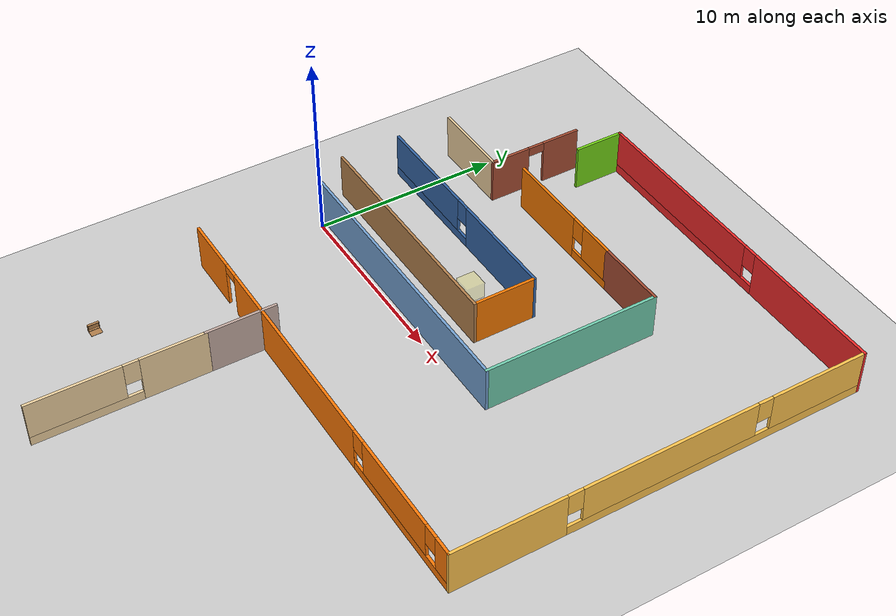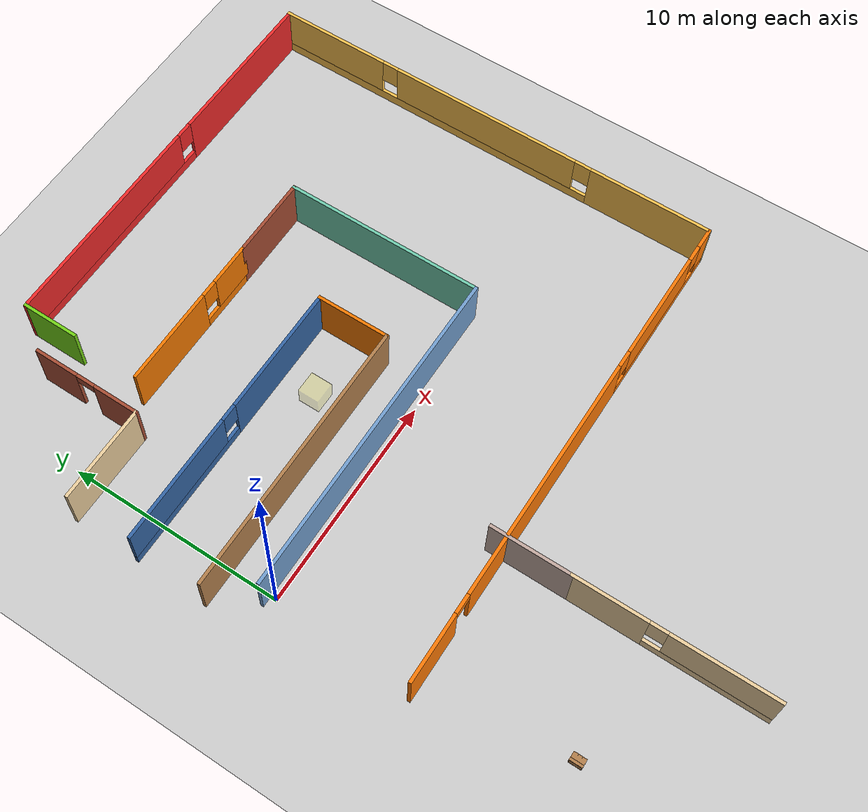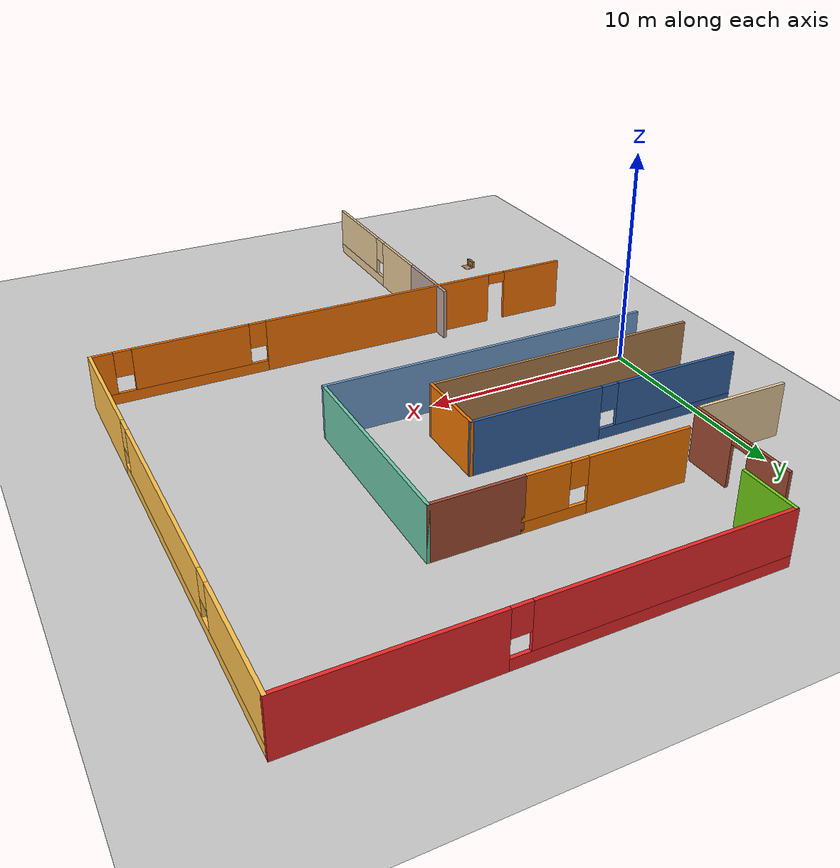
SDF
<sdf version="1.7">
 <world name="default">
  <model name="ground_plane">
   <static>1</static>
   <link name="link">
    <collision name="collision">
     <geometry><plane><normal>0 0 1</normal><size>100 100</size></plane></geometry>
     <surface>
      <contact><collide_bitmask>65535</collide_bitmask></contact>
      <friction><ode><mu>100</mu><mu2>50</mu2></ode></friction>
     </surface>
    </collision>
    <visual name="visual">
     <cast_shadows>0</cast_shadows>
     <geometry><plane><normal>0 0 1</normal><size>100 100</size></plane></geometry>
     <material>
      <script><uri>file://media/materials/scripts/gazebo.material</uri><name>Gazebo/Grey</name></script>
     </material>
    </visual>
   </link>
  </model>
  <model name="pavan">
   <pose>0.117796 3.95267 0 0 -0 0</pose>
   <link name="Wall_0">
    <collision name="Wall_0_Collision">
     <geometry><box><size>13 0.15 2.5</size></box></geometry>
     <pose>0 0 1.25 0 -0 0</pose>
    </collision>
    <visual name="Wall_0_Visual">
     <pose>0 0 1.25 0 -0 0</pose>
     <geometry><box><size>13 0.15 2.5</size></box></geometry>
     <material>
      <script><uri>file://media/materials/scripts/gazebo.material</uri><name>Gazebo/Wood</name></script>
      <ambient>0.937255 0.160784 0.160784 1</ambient>
     </material>
     <meta><layer>0</layer></meta>
    </visual>
    <pose>4.64523 -1.73876 0 0 -0 0</pose>
   </link>
   <link name="Wall_1">
    <collision name="Wall_1_Collision">
     <geometry><box><size>3.5 0.15 2.5</size></box></geometry>
     <pose>0 0 1.25 0 -0 0</pose>
    </collision>
    <visual name="Wall_1_Visual">
     <pose>0 0 1.25 0 -0 0</pose>
     <geometry><box><size>3.5 0.15 2.5</size></box></geometry>
     <material>
      <script><uri>file://media/materials/scripts/gazebo.material</uri><name>Gazebo/Grey</name></script>
      <ambient>0.960784 0.47451 0 1</ambient>
     </material>
     <meta><layer>0</layer></meta>
    </visual>
    <pose>11.0702 -0.063756 0 0 -0 1.5708</pose>
   </link>
   <link name="Wall_10">
    <pose>7.5403 5.74557 0 0 -0 0</pose>
    <visual name="Wall_10_Visual_0">
     <pose>-1.42681 0 1.25 0 -0 0</pose>
     <geometry><box><size>4.64637 0.15 2.5</size></box></geometry>
     <material>
      <script><uri>file://media/materials/scripts/gazebo.material</uri><name>Gazebo/Grey</name></script>
      <ambient>0.960784 0.47451 0 1</ambient>
     </material>
     <meta><layer>0</layer></meta>
    </visual>
    <collision name="Wall_10_Collision_0">
     <geometry><box><size>4.64637 0.15 2.5</size></box></geometry>
     <pose>-1.42681 0 1.25 0 -0 0</pose>
    </collision>
    <visual name="Wall_10_Visual_1">
     <pose>2.32319 0 0.25 0 -0 0</pose>
     <geometry><box><size>2.85363 0.15 0.5</size></box></geometry>
     <material>
      <script><uri>file://media/materials/scripts/gazebo.material</uri><name>Gazebo/Grey</name></script>
      <ambient>0.960784 0.47451 0 1</ambient>
     </material>
     <meta><layer>0</layer></meta>
    </visual>
    <collision name="Wall_10_Collision_1">
     <geometry><box><size>2.85363 0.15 0.5</size></box></geometry>
     <pose>2.32319 0 0.25 0 -0 0</pose>
    </collision>
    <visual name="Wall_10_Visual_2">
     <pose>2.72319 0 1.5 0 -0 0</pose>
     <geometry><box><size>2.05362 0.15 2</size></box></geometry>
     <material>
      <script><uri>file://media/materials/scripts/gazebo.material</uri><name>Gazebo/Grey</name></script>
      <ambient>0.960784 0.47451 0 1</ambient>
     </material>
     <meta><layer>0</layer></meta>
    </visual>
    <collision name="Wall_10_Collision_2">
     <geometry><box><size>2.05362 0.15 2</size></box></geometry>
     <pose>2.72319 0 1.5 0 -0 0</pose>
    </collision>
    <visual name="Wall_10_Visual_3">
     <pose>1.29638 0 1.9 0 -0 0</pose>
     <geometry><box><size>0.8 0.15 1.2</size></box></geometry>
     <material>
      <script><uri>file://media/materials/scripts/gazebo.material</uri><name>Gazebo/Grey</name></script>
      <ambient>0.960784 0.47451 0 1</ambient>
     </material>
     <meta><layer>0</layer></meta>
    </visual>
    <collision name="Wall_10_Collision_3">
     <geometry><box><size>0.8 0.15 1.2</size></box></geometry>
     <pose>1.29638 0 1.9 0 -0 0</pose>
    </collision>
   </link>
   <link name="Wall_11">
    <collision name="Wall_11_Collision">
     <geometry><box><size>4 0.15 2.5</size></box></geometry>
     <pose>0 0 1.25 0 -0 0</pose>
    </collision>
    <visual name="Wall_11_Visual">
     <pose>0 0 1.25 0 -0 0</pose>
     <geometry><box><size>4 0.15 2.5</size></box></geometry>
     <material>
      <script><uri>file://media/materials/scripts/gazebo.material</uri><name>Gazebo/Bricks</name></script>
      <ambient>1 1 1 1</ambient>
     </material>
     <meta><layer>0</layer></meta>
    </visual>
    <pose>13.1403 5.74557 0 0 -0 0</pose>
   </link>
   <link name="Wall_12">
    <collision name="Wall_12_Collision">
     <geometry><box><size>9.5 0.15 2.5</size></box></geometry>
     <pose>0 0 1.25 0 -0 0</pose>
    </collision>
    <visual name="Wall_12_Visual">
     <pose>0 0 1.25 0 -0 0</pose>
     <geometry><box><size>9.5 0.15 2.5</size></box></geometry>
     <material>
      <script><uri>file://media/materials/scripts/gazebo.material</uri><name>Gazebo/Grey</name></script>
      <ambient>0.435294 0.796078 0.67451 1</ambient>
     </material>
     <meta><layer>0</layer></meta>
    </visual>
    <pose>15.0653 1.07057 0 0 -0 -1.5708</pose>
   </link>
   <link name="Wall_13">
    <collision name="Wall_13_Collision">
     <geometry><box><size>15.75 0.15 2.5</size></box></geometry>
     <pose>0 0 1.25 0 -0 0</pose>
    </collision>
    <visual name="Wall_13_Visual">
     <pose>0 0 1.25 0 -0 0</pose>
     <geometry><box><size>15.75 0.15 2.5</size></box></geometry>
     <material>
      <script><uri>file://media/materials/scripts/gazebo.material</uri><name>Gazebo/Grey</name></script>
      <ambient>0.447059 0.623529 0.811765 1</ambient>
     </material>
     <meta><layer>0</layer></meta>
    </visual>
    <pose>7.2653 -3.60443 0 0 -0 3.14159</pose>
   </link>
   <link name="Wall_15">
    <pose>11.2653 -10.4544 0 0 -0 0</pose>
    <visual name="Wall_15_Visual_0">
     <pose>-10.2863 0 1.25 0 -0 0</pose>
     <geometry><box><size>3.17738 0.15 2.5</size></box></geometry>
     <material>
      <script><uri>file://media/materials/scripts/gazebo.material</uri><name>Gazebo/Grey</name></script>
      <ambient>0.996078 0.47451 0.0196078 1</ambient>
     </material>
     <meta><layer>0</layer></meta>
    </visual>
    <collision name="Wall_15_Collision_0">
     <geometry><box><size>3.17738 0.15 2.5</size></box></geometry>
     <pose>-10.2863 0 1.25 0 -0 0</pose>
    </collision>
    <visual name="Wall_15_Visual_1">
     <pose>-1.95398 0 1.25 0 -0 0</pose>
     <geometry><box><size>11.6873 0.15 2.5</size></box></geometry>
     <material>
      <script><uri>file://media/materials/scripts/gazebo.material</uri><name>Gazebo/Grey</name></script>
      <ambient>0.996078 0.47451 0.0196078 1</ambient>
     </material>
     <meta><layer>0</layer></meta>
    </visual>
    <collision name="Wall_15_Collision_1">
     <geometry><box><size>11.6873 0.15 2.5</size></box></geometry>
     <pose>-1.95398 0 1.25 0 -0 0</pose>
    </collision>
    <visual name="Wall_15_Visual_2">
     <pose>3.88967 0 1.25 0 -0 0</pose>
     <geometry><box><size>0 0.15 2.5</size></box></geometry>
     <material>
      <script><uri>file://media/materials/scripts/gazebo.material</uri><name>Gazebo/Grey</name></script>
      <ambient>0.996078 0.47451 0.0196078 1</ambient>
     </material>
     <meta><layer>0</layer></meta>
    </visual>
    <collision name="Wall_15_Collision_2">
     <geometry><box><size>0 0.15 2.5</size></box></geometry>
     <pose>3.88967 0 1.25 0 -0 0</pose>
    </collision>
    <visual name="Wall_15_Visual_3">
     <pose>7.88234 0 0.25 0 -0 0</pose>
     <geometry><box><size>7.98532 0.15 0.5</size></box></geometry>
     <material>
      <script><uri>file://media/materials/scripts/gazebo.material</uri><name>Gazebo/Grey</name></script>
      <ambient>0.996078 0.47451 0.0196078 1</ambient>
     </material>
     <meta><layer>0</layer></meta>
    </visual>
    <collision name="Wall_15_Collision_3">
     <geometry><box><size>7.98532 0.15 0.5</size></box></geometry>
     <pose>7.88234 0 0.25 0 -0 0</pose>
    </collision>
    <visual name="Wall_15_Visual_4">
     <pose>7.35787 0 1.5 0 -0 0</pose>
     <geometry><box><size>5.3364 0.15 2</size></box></geometry>
     <material>
      <script><uri>file://media/materials/scripts/gazebo.material</uri><name>Gazebo/Grey</name></script>
      <ambient>0.996078 0.47451 0.0196078 1</ambient>
     </material>
     <meta><layer>0</layer></meta>
    </visual>
    <collision name="Wall_15_Collision_4">
     <geometry><box><size>5.3364 0.15 2</size></box></geometry>
     <pose>7.35787 0 1.5 0 -0 0</pose>
    </collision>
    <visual name="Wall_15_Visual_5">
     <pose>11.3505 0 1.5 0 -0 0</pose>
     <geometry><box><size>1.04893 0.15 2</size></box></geometry>
     <material>
      <script><uri>file://media/materials/scripts/gazebo.material</uri><name>Gazebo/Grey</name></script>
      <ambient>0.996078 0.47451 0.0196078 1</ambient>
     </material>
     <meta><layer>0</layer></meta>
    </visual>
    <collision name="Wall_15_Collision_5">
     <geometry><box><size>1.04893 0.15 2</size></box></geometry>
     <pose>11.3505 0 1.5 0 -0 0</pose>
    </collision>
    <visual name="Wall_15_Visual_6">
     <pose>3.88967 0 1.9 0 -0 0</pose>
     <geometry><box><size>0 0.15 1.2</size></box></geometry>
     <material>
      <script><uri>file://media/materials/scripts/gazebo.material</uri><name>Gazebo/Grey</name></script>
      <ambient>0.996078 0.47451 0.0196078 1</ambient>
     </material>
     <meta><layer>0</layer></meta>
    </visual>
    <collision name="Wall_15_Collision_6">
     <geometry><box><size>0 0.15 1.2</size></box></geometry>
     <pose>3.88967 0 1.9 0 -0 0</pose>
    </collision>
    <visual name="Wall_15_Visual_7">
     <pose>4.28967 0 1.9 0 -0 0</pose>
     <geometry><box><size>0.8 0.15 1.2</size></box></geometry>
     <material>
      <script><uri>file://media/materials/scripts/gazebo.material</uri><name>Gazebo/Grey</name></script>
      <ambient>0.996078 0.47451 0.0196078 1</ambient>
     </material>
     <meta><layer>0</layer></meta>
    </visual>
    <collision name="Wall_15_Collision_7">
     <geometry><box><size>0.8 0.15 1.2</size></box></geometry>
     <pose>4.28967 0 1.9 0 -0 0</pose>
    </collision>
    <visual name="Wall_15_Visual_8">
     <pose>10.4261 0 1.9 0 -0 0</pose>
     <geometry><box><size>0.8 0.15 1.2</size></box></geometry>
     <material>
      <script><uri>file://media/materials/scripts/gazebo.material</uri><name>Gazebo/Grey</name></script>
      <ambient>0.996078 0.47451 0.0196078 1</ambient>
     </material>
     <meta><layer>0</layer></meta>
    </visual>
    <collision name="Wall_15_Collision_8">
     <geometry><box><size>0.8 0.15 1.2</size></box></geometry>
     <pose>10.4261 0 1.9 0 -0 0</pose>
    </collision>
    <visual name="Wall_15_Visual_9">
     <pose>-8.24762 0 2.25 0 -0 0</pose>
     <geometry><box><size>0.9 0.15 0.5</size></box></geometry>
     <material>
      <script><uri>file://media/materials/scripts/gazebo.material</uri><name>Gazebo/Grey</name></script>
      <ambient>0.996078 0.47451 0.0196078 1</ambient>
     </material>
     <meta><layer>0</layer></meta>
    </visual>
    <collision name="Wall_15_Collision_9">
     <geometry><box><size>0.9 0.15 0.5</size></box></geometry>
     <pose>-8.24762 0 2.25 0 -0 0</pose>
    </collision>
   </link>
   <link name="Wall_16">
    <pose>23.0653 0.595573 0 0 -0 1.5708</pose>
    <visual name="Wall_16_Visual_0">
     <pose>-8.17212 0 1.25 0 -0 0</pose>
     <geometry><box><size>5.90576 0.15 2.5</size></box></geometry>
     <material>
      <script><uri>file://media/materials/scripts/gazebo.material</uri><name>Gazebo/Grey</name></script>
      <ambient>1 0.764706 0.305882 1</ambient>
     </material>
     <meta><layer>0</layer></meta>
    </visual>
    <collision name="Wall_16_Collision_0">
     <geometry><box><size>5.90576 0.15 2.5</size></box></geometry>
     <pose>-8.17212 0 1.25 0 -0 0</pose>
    </collision>
    <visual name="Wall_16_Visual_1">
     <pose>2.95288 0 0.25 0 -0 0</pose>
     <geometry><box><size>16.3442 0.15 0.5</size></box></geometry>
     <material>
      <script><uri>file://media/materials/scripts/gazebo.material</uri><name>Gazebo/Grey</name></script>
      <ambient>1 0.764706 0.305882 1</ambient>
     </material>
     <meta><layer>0</layer></meta>
    </visual>
    <collision name="Wall_16_Collision_1">
     <geometry><box><size>16.3442 0.15 0.5</size></box></geometry>
     <pose>2.95288 0 0.25 0 -0 0</pose>
    </collision>
    <visual name="Wall_16_Visual_2">
     <pose>0.259157 0 1.5 0 -0 0</pose>
     <geometry><box><size>9.3568 0.15 2</size></box></geometry>
     <material>
      <script><uri>file://media/materials/scripts/gazebo.material</uri><name>Gazebo/Grey</name></script>
      <ambient>1 0.764706 0.305882 1</ambient>
     </material>
     <meta><layer>0</layer></meta>
    </visual>
    <collision name="Wall_16_Collision_2">
     <geometry><box><size>9.3568 0.15 2</size></box></geometry>
     <pose>0.259157 0 1.5 0 -0 0</pose>
    </collision>
    <visual name="Wall_16_Visual_3">
     <pose>8.43128 0 1.5 0 -0 0</pose>
     <geometry><box><size>5.38744 0.15 2</size></box></geometry>
     <material>
      <script><uri>file://media/materials/scripts/gazebo.material</uri><name>Gazebo/Grey</name></script>
      <ambient>1 0.764706 0.305882 1</ambient>
     </material>
     <meta><layer>0</layer></meta>
    </visual>
    <collision name="Wall_16_Collision_3">
     <geometry><box><size>5.38744 0.15 2</size></box></geometry>
     <pose>8.43128 0 1.5 0 -0 0</pose>
    </collision>
    <visual name="Wall_16_Visual_4">
     <pose>-4.81924 0 1.9 0 -0 0</pose>
     <geometry><box><size>0.8 0.15 1.2</size></box></geometry>
     <material>
      <script><uri>file://media/materials/scripts/gazebo.material</uri><name>Gazebo/Grey</name></script>
      <ambient>1 0.764706 0.305882 1</ambient>
     </material>
     <meta><layer>0</layer></meta>
    </visual>
    <collision name="Wall_16_Collision_4">
     <geometry><box><size>0.8 0.15 1.2</size></box></geometry>
     <pose>-4.81924 0 1.9 0 -0 0</pose>
    </collision>
    <visual name="Wall_16_Visual_5">
     <pose>5.33756 0 1.9 0 -0 0</pose>
     <geometry><box><size>0.8 0.15 1.2</size></box></geometry>
     <material>
      <script><uri>file://media/materials/scripts/gazebo.material</uri><name>Gazebo/Grey</name></script>
      <ambient>1 0.764706 0.305882 1</ambient>
     </material>
     <meta><layer>0</layer></meta>
    </visual>
    <collision name="Wall_16_Collision_5">
     <geometry><box><size>0.8 0.15 1.2</size></box></geometry>
     <pose>5.33756 0 1.9 0 -0 0</pose>
    </collision>
   </link>
   <link name="Wall_17">
    <pose>13.5153 11.6456 0 0 -0 3.14159</pose>
    <visual name="Wall_17_Visual_0">
     <pose>-5.68849 0 1.25 0 -0 0</pose>
     <geometry><box><size>7.87303 0.15 2.5</size></box></geometry>
     <material>
      <script><uri>file://media/materials/scripts/gazebo.material</uri><name>Gazebo/Grey</name></script>
      <ambient>0.937255 0.160784 0.160784 1</ambient>
     </material>
     <meta><layer>0</layer></meta>
    </visual>
    <collision name="Wall_17_Collision_0">
     <geometry><box><size>7.87303 0.15 2.5</size></box></geometry>
     <pose>-5.68849 0 1.25 0 -0 0</pose>
    </collision>
    <visual name="Wall_17_Visual_1">
     <pose>3.93651 0 0.25 0 -0 0</pose>
     <geometry><box><size>11.377 0.15 0.5</size></box></geometry>
     <material>
      <script><uri>file://media/materials/scripts/gazebo.material</uri><name>Gazebo/Grey</name></script>
      <ambient>0.937255 0.160784 0.160784 1</ambient>
     </material>
     <meta><layer>0</layer></meta>
    </visual>
    <collision name="Wall_17_Collision_1">
     <geometry><box><size>11.377 0.15 0.5</size></box></geometry>
     <pose>3.93651 0 0.25 0 -0 0</pose>
    </collision>
    <visual name="Wall_17_Visual_2">
     <pose>4.33651 0 1.5 0 -0 0</pose>
     <geometry><box><size>10.577 0.15 2</size></box></geometry>
     <material>
      <script><uri>file://media/materials/scripts/gazebo.material</uri><name>Gazebo/Grey</name></script>
      <ambient>0.937255 0.160784 0.160784 1</ambient>
     </material>
     <meta><layer>0</layer></meta>
    </visual>
    <collision name="Wall_17_Collision_2">
     <geometry><box><size>10.577 0.15 2</size></box></geometry>
     <pose>4.33651 0 1.5 0 -0 0</pose>
    </collision>
    <visual name="Wall_17_Visual_3">
     <pose>-1.35197 0 1.9 0 -0 0</pose>
     <geometry><box><size>0.8 0.15 1.2</size></box></geometry>
     <material>
      <script><uri>file://media/materials/scripts/gazebo.material</uri><name>Gazebo/Grey</name></script>
      <ambient>0.937255 0.160784 0.160784 1</ambient>
     </material>
     <meta><layer>0</layer></meta>
    </visual>
    <collision name="Wall_17_Collision_3">
     <geometry><box><size>0.8 0.15 1.2</size></box></geometry>
     <pose>-1.35197 0 1.9 0 -0 0</pose>
    </collision>
   </link>
   <link name="Wall_18">
    <collision name="Wall_18_Collision">
     <geometry><box><size>2.75 0.15 2.5</size></box></geometry>
     <pose>0 0 1.25 0 -0 0</pose>
    </collision>
    <visual name="Wall_18_Visual">
     <pose>0 0 1.25 0 -0 0</pose>
     <geometry><box><size>2.75 0.15 2.5</size></box></geometry>
     <material>
      <script><uri>file://media/materials/scripts/gazebo.material</uri><name>Gazebo/Grey</name></script>
      <ambient>0.45098 0.823529 0.0862745 1</ambient>
     </material>
     <meta><layer>0</layer></meta>
    </visual>
    <pose>3.9653 10.3456 0 0 -0 -1.5708</pose>
   </link>
   <link name="Wall_2">
    <pose>4.64523 1.61124 0 0 -0 3.14159</pose>
    <visual name="Wall_2_Visual_0">
     <pose>-3.42972 0 1.25 0 -0 0</pose>
     <geometry><box><size>6.14055 0.15 2.5</size></box></geometry>
     <material>
      <script><uri>file://media/materials/scripts/gazebo.material</uri><name>Gazebo/Grey</name></script>
      <ambient>0.203922 0.396078 0.643137 1</ambient>
     </material>
     <meta><layer>0</layer></meta>
    </visual>
    <collision name="Wall_2_Collision_0">
     <geometry><box><size>6.14055 0.15 2.5</size></box></geometry>
     <pose>-3.42972 0 1.25 0 -0 0</pose>
    </collision>
    <visual name="Wall_2_Visual_1">
     <pose>3.07028 0 0.25 0 -0 0</pose>
     <geometry><box><size>6.85945 0.15 0.5</size></box></geometry>
     <material>
      <script><uri>file://media/materials/scripts/gazebo.material</uri><name>Gazebo/Grey</name></script>
      <ambient>0.203922 0.396078 0.643137 1</ambient>
     </material>
     <meta><layer>0</layer></meta>
    </visual>
    <collision name="Wall_2_Collision_1">
     <geometry><box><size>6.85945 0.15 0.5</size></box></geometry>
     <pose>3.07028 0 0.25 0 -0 0</pose>
    </collision>
    <visual name="Wall_2_Visual_2">
     <pose>3.47028 0 1.5 0 -0 0</pose>
     <geometry><box><size>6.05945 0.15 2</size></box></geometry>
     <material>
      <script><uri>file://media/materials/scripts/gazebo.material</uri><name>Gazebo/Grey</name></script>
      <ambient>0.203922 0.396078 0.643137 1</ambient>
     </material>
     <meta><layer>0</layer></meta>
    </visual>
    <collision name="Wall_2_Collision_2">
     <geometry><box><size>6.05945 0.15 2</size></box></geometry>
     <pose>3.47028 0 1.5 0 -0 0</pose>
    </collision>
    <visual name="Wall_2_Visual_3">
     <pose>0.040554 0 1.9 0 -0 0</pose>
     <geometry><box><size>0.8 0.15 1.2</size></box></geometry>
     <material>
      <script><uri>file://media/materials/scripts/gazebo.material</uri><name>Gazebo/Grey</name></script>
      <ambient>0.203922 0.396078 0.643137 1</ambient>
     </material>
     <meta><layer>0</layer></meta>
    </visual>
    <collision name="Wall_2_Collision_3">
     <geometry><box><size>0.8 0.15 1.2</size></box></geometry>
     <pose>0.040554 0 1.9 0 -0 0</pose>
    </collision>
   </link>
   <link name="Wall_20">
    <pose>6.2847 -17.75 0 0 -0 -1.5708</pose>
    <visual name="Wall_20_Visual_0">
     <pose>-2.7871 0 1.25 0 -0 0</pose>
     <geometry><box><size>3.42581 0.15 2.5</size></box></geometry>
     <material>
      <script><uri>file://media/materials/scripts/gazebo.material</uri><name>Gazebo/Grey</name></script>
      <ambient>0.921569 0.807843 0.615686 1</ambient>
     </material>
     <meta><layer>0</layer></meta>
    </visual>
    <collision name="Wall_20_Collision_0">
     <geometry><box><size>3.42581 0.15 2.5</size></box></geometry>
     <pose>-2.7871 0 1.25 0 -0 0</pose>
    </collision>
    <visual name="Wall_20_Visual_1">
     <pose>1.7129 0 0.25 0 -0 0</pose>
     <geometry><box><size>5.57419 0.15 0.5</size></box></geometry>
     <material>
      <script><uri>file://media/materials/scripts/gazebo.material</uri><name>Gazebo/Grey</name></script>
      <ambient>0.921569 0.807843 0.615686 1</ambient>
     </material>
     <meta><layer>0</layer></meta>
    </visual>
    <collision name="Wall_20_Collision_1">
     <geometry><box><size>5.57419 0.15 0.5</size></box></geometry>
     <pose>1.7129 0 0.25 0 -0 0</pose>
    </collision>
    <visual name="Wall_20_Visual_2">
     <pose>2.1129 0 1.5 0 -0 0</pose>
     <geometry><box><size>4.77419 0.15 2</size></box></geometry>
     <material>
      <script><uri>file://media/materials/scripts/gazebo.material</uri><name>Gazebo/Grey</name></script>
      <ambient>0.921569 0.807843 0.615686 1</ambient>
     </material>
     <meta><layer>0</layer></meta>
    </visual>
    <collision name="Wall_20_Collision_2">
     <geometry><box><size>4.77419 0.15 2</size></box></geometry>
     <pose>2.1129 0 1.5 0 -0 0</pose>
    </collision>
    <visual name="Wall_20_Visual_3">
     <pose>-0.674194 0 1.9 0 -0 0</pose>
     <geometry><box><size>0.8 0.15 1.2</size></box></geometry>
     <material>
      <script><uri>file://media/materials/scripts/gazebo.material</uri><name>Gazebo/Grey</name></script>
      <ambient>0.921569 0.807843 0.615686 1</ambient>
     </material>
     <meta><layer>0</layer></meta>
    </visual>
    <collision name="Wall_20_Collision_3">
     <geometry><box><size>0.8 0.15 1.2</size></box></geometry>
     <pose>-0.674194 0 1.9 0 -0 0</pose>
    </collision>
   </link>
   <link name="Wall_26">
    <collision name="Wall_26_Collision">
     <geometry><box><size>3.75 0.15 2.5</size></box></geometry>
     <pose>0 0 1.25 0 -0 0</pose>
    </collision>
    <visual name="Wall_26_Visual">
     <pose>0 0 1.25 0 -0 0</pose>
     <geometry><box><size>3.75 0.15 2.5</size></box></geometry>
     <material>
      <script><uri>file://media/materials/scripts/gazebo.material</uri><name>Gazebo/Grey</name></script>
      <ambient>0.760784 0.662745 0.627451 1</ambient>
     </material>
     <meta><layer>0</layer></meta>
    </visual>
    <pose>6.2847 -11.525 0 0 -0 1.5708</pose>
   </link>
   <link name="Wall_4">
    <collision name="Wall_4_Collision">
     <geometry><box><size>4.5 0.15 2.5</size></box></geometry>
     <pose>0 0 1.25 0 -0 0</pose>
    </collision>
    <visual name="Wall_4_Visual">
     <pose>0 0 1.25 0 -0 0</pose>
     <geometry><box><size>4.5 0.15 2.5</size></box></geometry>
     <material>
      <script><uri>file://media/materials/scripts/gazebo.material</uri><name>Gazebo/Grey</name></script>
      <ambient>0.921569 0.807843 0.615686 1</ambient>
     </material>
     <meta><layer>0</layer></meta>
    </visual>
    <pose>0.395229 4.71124 0 0 -0 0</pose>
   </link>
   <link name="Wall_5">
    <pose>2.57023 7.26124 0 0 -0 1.5708</pose>
    <visual name="Wall_5_Visual_0">
     <pose>-1.51386 0 1.25 0 -0 0</pose>
     <geometry><box><size>2.22229 0.15 2.5</size></box></geometry>
     <material>
      <script><uri>file://media/materials/scripts/gazebo.material</uri><name>Gazebo/Bricks</name></script>
      <ambient>1 1 1 1</ambient>
     </material>
     <meta><layer>0</layer></meta>
    </visual>
    <collision name="Wall_5_Collision_0">
     <geometry><box><size>2.22229 0.15 2.5</size></box></geometry>
     <pose>-1.51386 0 1.25 0 -0 0</pose>
    </collision>
    <visual name="Wall_5_Visual_1">
     <pose>1.56114 0 1.25 0 -0 0</pose>
     <geometry><box><size>2.12771 0.15 2.5</size></box></geometry>
     <material>
      <script><uri>file://media/materials/scripts/gazebo.material</uri><name>Gazebo/Bricks</name></script>
      <ambient>1 1 1 1</ambient>
     </material>
     <meta><layer>0</layer></meta>
    </visual>
    <collision name="Wall_5_Collision_1">
     <geometry><box><size>2.12771 0.15 2.5</size></box></geometry>
     <pose>1.56114 0 1.25 0 -0 0</pose>
    </collision>
    <visual name="Wall_5_Visual_2">
     <pose>0.047287 0 2.25 0 -0 0</pose>
     <geometry><box><size>0.9 0.15 0.5</size></box></geometry>
     <material>
      <script><uri>file://media/materials/scripts/gazebo.material</uri><name>Gazebo/Bricks</name></script>
      <ambient>1 1 1 1</ambient>
     </material>
     <meta><layer>0</layer></meta>
    </visual>
    <collision name="Wall_5_Collision_2">
     <geometry><box><size>0.9 0.15 0.5</size></box></geometry>
     <pose>0.047287 0 2.25 0 -0 0</pose>
    </collision>
   </link>
   <static>1</static>
  </model>
  <model name="wooden_case">
   <link name="base">
    <pose>0 0 0.024 0 -0 0</pose>
    <inertial>
     <pose>-0.022184 0 0.171592 0 -0 0</pose>
     <mass>3.96264</mass>
     <inertia>
      <ixx>0.213536</ixx>
      <ixy>0</ixy>
      <ixz>0.000779377</ixz>
      <iyy>0.0708943</iyy>
      <iyz>0</iyz>
      <izz>0.154604</izz>
     </inertia>
    </inertial>
    <collision name="collision_back">
     <pose>-0.053975 0 0.1778 0 -0 0</pose>
     <geometry><box><size>0.01905 0.5461 0.3175</size></box></geometry>
     <surface>
      <contact>
       <poissons_ratio>0.347</poissons_ratio>
       <elastic_modulus>8.8e+09</elastic_modulus>
       <ode><kp>100000</kp><kd>100</kd><max_vel>100</max_vel><min_depth>0.001</min_depth></ode>
      </contact>
      <friction>
       <torsional>
        <coefficient>1</coefficient>
        <use_patch_radius>0</use_patch_radius>
        <surface_radius>0.01</surface_radius>
       </torsional>
      </friction>
     </surface>
    </collision>
    <visual name="visual_back">
     <pose>-0.053975 0 0.1778 0 -0 0</pose>
     <geometry><box><size>0.01905 0.5461 0.3175</size></box></geometry>
     <material>
      <script><uri>file://media/materials/scripts/gazebo.material</uri><name>Gazebo/Wood</name></script>
     </material>
    </visual>
    <collision name="collision_bottom">
     <pose>0 0 0.009525 0 -0 0</pose>
     <geometry><box><size>0.127 0.5842 0.01905</size></box></geometry>
     <surface>
      <contact>
       <poissons_ratio>0.347</poissons_ratio>
       <elastic_modulus>8.8e+09</elastic_modulus>
       <ode><kp>100000</kp><kd>100</kd><max_vel>100</max_vel><min_depth>0.001</min_depth></ode>
      </contact>
      <friction>
       <torsional>
        <coefficient>1</coefficient>
        <use_patch_radius>0</use_patch_radius>
        <surface_radius>0.01</surface_radius>
       </torsional>
      </friction>
     </surface>
    </collision>
    <visual name="visual_bottom">
     <pose>0 0 0.009525 0 -0 0</pose>
     <geometry><box><size>0.127 0.5842 0.01905</size></box></geometry>
     <material>
      <script><uri>file://media/materials/scripts/gazebo.material</uri><name>Gazebo/Wood</name></script>
     </material>
    </visual>
    <collision name="collision_top">
     <pose>0 0 0.346075 0 -0 0</pose>
     <geometry><box><size>0.127 0.5842 0.01905</size></box></geometry>
     <surface>
      <contact>
       <poissons_ratio>0.347</poissons_ratio>
       <elastic_modulus>8.8e+09</elastic_modulus>
       <ode><kp>100000</kp><kd>100</kd><max_vel>100</max_vel><min_depth>0.001</min_depth></ode>
      </contact>
      <friction>
       <torsional>
        <coefficient>1</coefficient>
        <use_patch_radius>0</use_patch_radius>
        <surface_radius>0.01</surface_radius>
       </torsional>
      </friction>
     </surface>
    </collision>
    <visual name="visual_top">
     <pose>0 0 0.346075 0 -0 0</pose>
     <geometry><box><size>0.127 0.5842 0.01905</size></box></geometry>
     <material>
      <script><uri>file://media/materials/scripts/gazebo.material</uri><name>Gazebo/Wood</name></script>
     </material>
    </visual>
    <collision name="collision_left">
     <pose>0 -0.282575 0.1778 0 -0 0</pose>
     <geometry><box><size>0.127 0.01905 0.3175</size></box></geometry>
     <surface>
      <contact>
       <poissons_ratio>0.347</poissons_ratio>
       <elastic_modulus>8.8e+09</elastic_modulus>
       <ode><kp>100000</kp><kd>100</kd><max_vel>100</max_vel><min_depth>0.001</min_depth></ode>
      </contact>
      <friction>
       <torsional>
        <coefficient>1</coefficient>
        <use_patch_radius>0</use_patch_radius>
        <surface_radius>0.01</surface_radius>
       </torsional>
      </friction>
     </surface>
    </collision>
    <visual name="visual_left">
     <pose>0 -0.282575 0.1778 0 -0 0</pose>
     <geometry><box><size>0.127 0.01905 0.3175</size></box></geometry>
     <material>
      <script><uri>file://media/materials/scripts/gazebo.material</uri><name>Gazebo/Wood</name></script>
     </material>
    </visual>
    <collision name="collision_right">
     <pose>0 0.282575 0.1778 0 -0 0</pose>
     <geometry><box><size>0.127 0.01905 0.3175</size></box></geometry>
     <surface>
      <contact>
       <poissons_ratio>0.347</poissons_ratio>
       <elastic_modulus>8.8e+09</elastic_modulus>
       <ode><kp>100000</kp><kd>100</kd><max_vel>100</max_vel><min_depth>0.001</min_depth></ode>
      </contact>
      <friction>
       <torsional>
        <coefficient>1</coefficient>
        <use_patch_radius>0</use_patch_radius>
        <surface_radius>0.01</surface_radius>
       </torsional>
      </friction>
     </surface>
    </collision>
    <visual name="visual_right">
     <pose>0 0.282575 0.1778 0 -0 0</pose>
     <geometry><box><size>0.127 0.01905 0.3175</size></box></geometry>
     <material>
      <script><uri>file://media/materials/scripts/gazebo.material</uri><name>Gazebo/Wood</name></script>
     </material>
    </visual>
    <collision name="collision_block_left">
     <pose>0.0095 -0.2151 -0.012 0 -0 0</pose>
     <geometry><box><size>0.108 0.05 0.024</size></box></geometry>
     <surface>
      <contact>
       <poissons_ratio>0.347</poissons_ratio>
       <elastic_modulus>8.8e+09</elastic_modulus>
       <ode><kp>100000</kp><kd>100</kd><max_vel>100</max_vel><min_depth>0.001</min_depth></ode>
      </contact>
      <friction>
       <torsional>
        <coefficient>1</coefficient>
        <use_patch_radius>0</use_patch_radius>
        <surface_radius>0.01</surface_radius>
       </torsional>
      </friction>
     </surface>
    </collision>
    <visual name="visual_block_left">
     <pose>0.0095 -0.2151 -0.012 0 -0 0</pose>
     <geometry><box><size>0.108 0.05 0.024</size></box></geometry>
     <material>
      <script><uri>file://media/materials/scripts/gazebo.material</uri><name>Gazebo/Wood</name></script>
     </material>
    </visual>
    <collision name="collision_block_right">
     <pose>0.0095 0.2151 -0.012 0 -0 0</pose>
     <geometry><box><size>0.108 0.05 0.024</size></box></geometry>
     <surface>
      <contact>
       <poissons_ratio>0.347</poissons_ratio>
       <elastic_modulus>8.8e+09</elastic_modulus>
       <ode><kp>100000</kp><kd>100</kd><max_vel>100</max_vel><min_depth>0.001</min_depth></ode>
      </contact>
      <friction>
       <torsional>
        <coefficient>1</coefficient>
        <use_patch_radius>0</use_patch_radius>
        <surface_radius>0.01</surface_radius>
       </torsional>
      </friction>
     </surface>
    </collision>
    <visual name="visual_block_right">
     <pose>0.0095 0.2151 -0.012 0 -0 0</pose>
     <geometry><box><size>0.108 0.05 0.024</size></box></geometry>
     <material>
      <script><uri>file://media/materials/scripts/gazebo.material</uri><name>Gazebo/Wood</name></script>
     </material>
    </visual>
   </link>
   <link name="lid">
    <pose>0.243775 0 0.009525 0 -0 0</pose>
    <inertial>
     <mass>1.97874</mass>
     <inertia>
      <ixx>0.0563367</ixx>
      <ixy>0</ixy>
      <ixz>0</ixz>
      <iyy>0.020911</iyy>
      <iyz>0</iyz>
      <izz>0.0771281</izz>
     </inertia>
    </inertial>
    <collision name="collision">
     <geometry><box><size>0.3556 0.5842 0.01905</size></box></geometry>
     <surface>
      <contact>
       <poissons_ratio>0.347</poissons_ratio>
       <elastic_modulus>8.8e+09</elastic_modulus>
       <ode><kp>100000</kp><kd>100</kd><max_vel>100</max_vel><min_depth>0.001</min_depth></ode>
      </contact>
      <friction>
       <torsional>
        <coefficient>1</coefficient>
        <use_patch_radius>0</use_patch_radius>
        <surface_radius>0.01</surface_radius>
       </torsional>
      </friction>
     </surface>
    </collision>
    <visual name="visual">
     <geometry><box><size>0.3556 0.5842 0.01905</size></box></geometry>
     <material>
      <script><uri>file://media/materials/scripts/gazebo.material</uri><name>Gazebo/Wood</name></script>
     </material>
    </visual>
    <visual name="tee_nut_1">
     <pose>0.122 -0.216 0 0 -0 0</pose>
     <geometry><cylinder><radius>0.00635</radius><length>0.0192405</length></cylinder></geometry>
     <material>
      <script><uri>file://media/materials/scripts/gazebo.material</uri><name>Gazebo/Grey</name></script>
     </material>
    </visual>
    <visual name="tee_nut_2">
     <pose>0.122 -0.088 0 0 -0 0</pose>
     <geometry><cylinder><radius>0.00635</radius><length>0.0192405</length></cylinder></geometry>
     <material>
      <script><uri>file://media/materials/scripts/gazebo.material</uri><name>Gazebo/Grey</name></script>
     </material>
    </visual>
    <visual name="tee_nut_3">
     <pose>0.122 0.088 0 0 -0 0</pose>
     <geometry><cylinder><radius>0.00635</radius><length>0.0192405</length></cylinder></geometry>
     <material>
      <script><uri>file://media/materials/scripts/gazebo.material</uri><name>Gazebo/Grey</name></script>
     </material>
    </visual>
    <visual name="tee_nut_4">
     <pose>0.122 0.216 0 0 -0 0</pose>
     <geometry><cylinder><radius>0.00635</radius><length>0.0192405</length></cylinder></geometry>
     <material>
      <script><uri>file://media/materials/scripts/gazebo.material</uri><name>Gazebo/Grey</name></script>
     </material>
    </visual>
   </link>
   <joint name="lid_hinge" type="revolute">
    <pose>-0.1778 0 0.01905 0 -0 0</pose>
    <parent>base</parent>
    <child>lid</child>
    <axis>
     <xyz>0 1 0</xyz>
     <limit><upper>0.523599</upper><lower>-1.5708</lower></limit>
     <dynamics><spring_reference>0</spring_reference><spring_stiffness>0</spring_stiffness></dynamics>
    </axis>
   </joint>
   <pose>0.948667 -12.9668 -0.001057 0 -0.000429 0</pose>
  </model>
  <model name="RegionEventBox">
   <static>1</static>
   <pose>8.23869 3.84057 0 0 -0 0</pose>
   <link name="link">
    <visual name="visual">
     <transparency>0.75</transparency>
     <geometry><box><size>1 1 1.75</size></box></geometry>
     <material>
      <script><uri>file://media/materials/scripts/gazebo.material</uri><name>Gazebo/Yellow</name></script>
     </material>
    </visual>
   </link>
   <plugin name="region_event_box" filename="libRegionEventBoxPlugin.so">
    <event><name>model_in_region_event_box</name><type>inclusion</type><active>1</active></event>
   </plugin>
  </model>
 </world>
</sdf>
